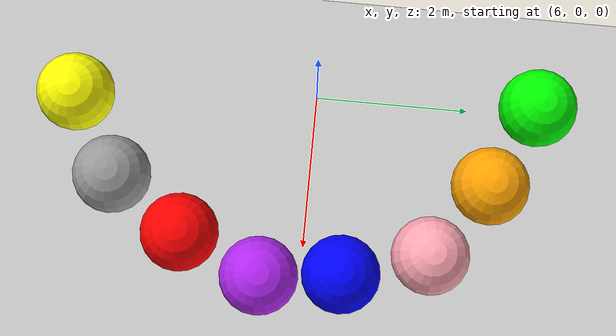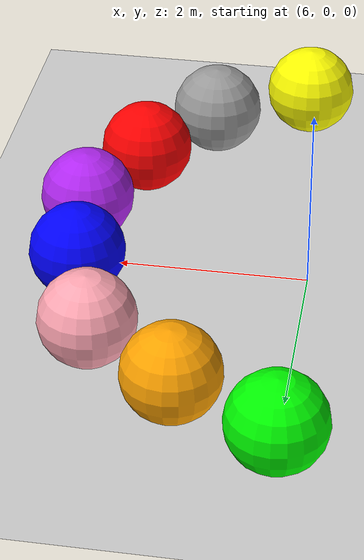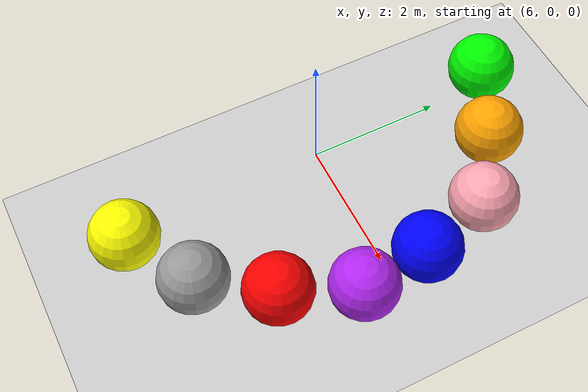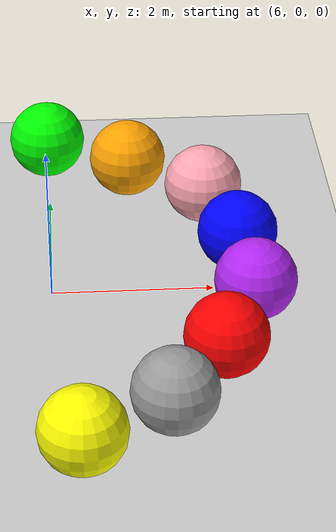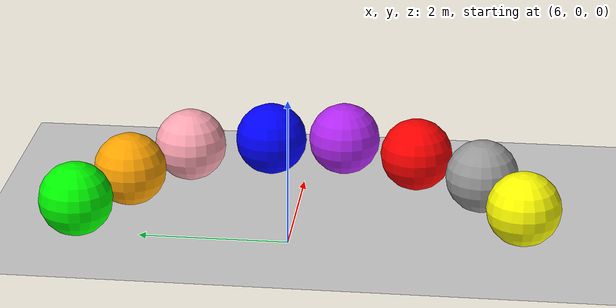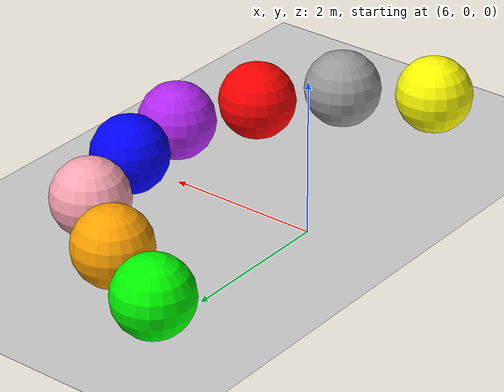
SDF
<sdf version="1.7">
 <world name="default">
  <light name="sun" type="directional">
   <pose>0 0 10 0 -0 0</pose>
   <diffuse>0.8 0.8 0.8 1</diffuse>
   <specular>0.2 0.2 0.2 1</specular>
   <attenuation>
    <range>1000</range>
    <constant>0.9</constant>
    <linear>0.01</linear>
    <quadratic>0.001</quadratic>
   </attenuation>
   <direction>-0.5 0.1 -0.9</direction>
   <spot><inner_angle>0</inner_angle><outer_angle>0</outer_angle><falloff>0</falloff></spot>
  </light>
  <model name="ground_plane">
   <static>1</static>
   <link name="link">
    <collision name="collision">
     <geometry><plane><normal>0 0 1</normal><size>100 100</size></plane></geometry>
     <surface>
      <contact><collide_bitmask>65535</collide_bitmask></contact>
      <friction><ode><mu>100</mu><mu2>50</mu2></ode></friction>
     </surface>
    </collision>
    <visual name="visual">
     <cast_shadows>0</cast_shadows>
     <geometry><plane><normal>0 0 1</normal><size>100 100</size></plane></geometry>
     <material>
      <script><uri>file://media/materials/scripts/gazebo.material</uri><name>Gazebo/Grey</name></script>
     </material>
    </visual>
   </link>
  </model>
  <gravity>0 0 -9.8</gravity>
  <magnetic_field>6e-06 2.3e-05 -4.2e-05</magnetic_field>
  <atmosphere type="adiabatic"/>
  <physics type="ode">
   <max_step_size>0.001</max_step_size>
   <real_time_factor>1</real_time_factor>
   <real_time_update_rate>1000</real_time_update_rate>
  </physics>
  <scene><ambient>0.4 0.4 0.4 1</ambient><background>0.7 0.7 0.7 1</background><shadows>1</shadows></scene>
  <audio><device>default</device></audio>
  <spherical_coordinates>
   <surface_model>EARTH_WGS84</surface_model>
   <latitude_deg>0</latitude_deg>
   <longitude_deg>0</longitude_deg>
   <elevation>0</elevation>
   <heading_deg>0</heading_deg>
  </spherical_coordinates>
  <model name="unit_sphere_blue">
   <link name="link">
    <inertial>
     <mass>1</mass>
     <inertia><ixx>0.1</ixx><ixy>0</ixy><ixz>0</ixz><iyy>0.1</iyy><iyz>0</iyz><izz>0.1</izz></inertia>
    </inertial>
    <visual name="visual">
     <geometry><sphere><radius>0.5</radius></sphere></geometry>
     <material>
      <script><name>Gazebo/Grey</name><uri>file://media/materials/scripts/gazebo.material</uri></script>
      <shader type="pixel"><normal_map>__default__</normal_map></shader>
      <ambient>0 0 1 1</ambient>
      <diffuse>0.7 0.7 0.7 1</diffuse>
      <specular>0.01 0.01 0.01 1</specular>
      <emissive>0 0 0 1</emissive>
     </material>
    </visual>
    <collision name="collision">
     <geometry><sphere><radius>0.5</radius></sphere></geometry>
     <surface>
      <friction>
       <ode><mu>1</mu><mu2>1</mu2><fdir1>0 0 0</fdir1><slip1>0</slip1><slip2>0</slip2></ode>
       <torsional>
        <coefficient>1</coefficient>
        <patch_radius>0</patch_radius>
        <surface_radius>0</surface_radius>
        <use_patch_radius>1</use_patch_radius>
        <ode><slip>0</slip></ode>
       </torsional>
      </friction>
      <bounce><restitution_coefficient>0</restitution_coefficient><threshold>1e+06</threshold></bounce>
      <contact>
       <collide_without_contact>0</collide_without_contact>
       <collide_without_contact_bitmask>1</collide_without_contact_bitmask>
       <collide_bitmask>1</collide_bitmask>
       <ode>
        <soft_cfm>0</soft_cfm>
        <soft_erp>0.2</soft_erp>
        <kp>1e+13</kp>
        <kd>1</kd>
        <max_vel>0.01</max_vel>
        <min_depth>0</min_depth>
       </ode>
       <bullet>
        <split_impulse>1</split_impulse>
        <split_impulse_penetration_threshold>-0.01</split_impulse_penetration_threshold>
        <soft_cfm>0</soft_cfm>
        <soft_erp>0.2</soft_erp>
        <kp>1e+13</kp>
        <kd>1</kd>
       </bullet>
      </contact>
     </surface>
    </collision>
   </link>
   <static>0</static>
   <pose>8.33496 0.510206 0.5 0 -0 0</pose>
  </model>
  <model name="unit_sphere_green">
   <link name="link">
    <inertial>
     <mass>1</mass>
     <inertia><ixx>0.1</ixx><ixy>0</ixy><ixz>0</ixz><iyy>0.1</iyy><iyz>0</iyz><izz>0.1</izz></inertia>
    </inertial>
    <visual name="visual">
     <geometry><sphere><radius>0.5</radius></sphere></geometry>
     <material>
      <script><name>Gazebo/Grey</name><uri>file://media/materials/scripts/gazebo.material</uri></script>
      <shader type="pixel"><normal_map>__default__</normal_map></shader>
      <ambient>0 1 0 1</ambient>
      <diffuse>0.7 0.7 0.7 1</diffuse>
      <specular>0.01 0.01 0.01 1</specular>
      <emissive>0 0 0 1</emissive>
     </material>
    </visual>
    <collision name="collision">
     <geometry><sphere><radius>0.5</radius></sphere></geometry>
     <surface>
      <friction>
       <ode><mu>1</mu><mu2>1</mu2><fdir1>0 0 0</fdir1><slip1>0</slip1><slip2>0</slip2></ode>
       <torsional>
        <coefficient>1</coefficient>
        <patch_radius>0</patch_radius>
        <surface_radius>0</surface_radius>
        <use_patch_radius>1</use_patch_radius>
        <ode><slip>0</slip></ode>
       </torsional>
      </friction>
      <bounce><restitution_coefficient>0</restitution_coefficient><threshold>1e+06</threshold></bounce>
      <contact>
       <collide_without_contact>0</collide_without_contact>
       <collide_without_contact_bitmask>1</collide_without_contact_bitmask>
       <collide_bitmask>1</collide_bitmask>
       <ode>
        <soft_cfm>0</soft_cfm>
        <soft_erp>0.2</soft_erp>
        <kp>1e+13</kp>
        <kd>1</kd>
        <max_vel>0.01</max_vel>
        <min_depth>0</min_depth>
       </ode>
       <bullet>
        <split_impulse>1</split_impulse>
        <split_impulse_penetration_threshold>-0.01</split_impulse_penetration_threshold>
        <soft_cfm>0</soft_cfm>
        <soft_erp>0.2</soft_erp>
        <kp>1e+13</kp>
        <kd>1</kd>
       </bullet>
      </contact>
     </surface>
    </collision>
   </link>
   <static>0</static>
   <pose>5.9823 2.83522 0.5 0 -0 0</pose>
  </model>
  <model name="unit_sphere_red">
   <link name="link">
    <inertial>
     <mass>1</mass>
     <inertia><ixx>0.1</ixx><ixy>0</ixy><ixz>0</ixz><iyy>0.1</iyy><iyz>0</iyz><izz>0.1</izz></inertia>
    </inertial>
    <visual name="visual">
     <geometry><sphere><radius>0.5</radius></sphere></geometry>
     <material>
      <script><name>Gazebo/Grey</name><uri>file://media/materials/scripts/gazebo.material</uri></script>
      <shader type="pixel"><normal_map>__default__</normal_map></shader>
      <diffuse>1 0 0 1</diffuse>
      <ambient>1 0 0 1</ambient>
      <specular>1 0 0 1</specular>
      <emissive>0 0 0 1</emissive>
     </material>
    </visual>
    <collision name="collision">
     <geometry><sphere><radius>0.5</radius></sphere></geometry>
     <surface>
      <friction>
       <ode><mu>1</mu><mu2>1</mu2><fdir1>0 0 0</fdir1><slip1>0</slip1><slip2>0</slip2></ode>
       <torsional>
        <coefficient>1</coefficient>
        <patch_radius>0</patch_radius>
        <surface_radius>0</surface_radius>
        <use_patch_radius>1</use_patch_radius>
        <ode><slip>0</slip></ode>
       </torsional>
      </friction>
      <bounce><restitution_coefficient>0</restitution_coefficient><threshold>1e+06</threshold></bounce>
      <contact>
       <collide_without_contact>0</collide_without_contact>
       <collide_without_contact_bitmask>1</collide_without_contact_bitmask>
       <collide_bitmask>1</collide_bitmask>
       <ode>
        <soft_cfm>0</soft_cfm>
        <soft_erp>0.2</soft_erp>
        <kp>1e+13</kp>
        <kd>1</kd>
        <max_vel>0.01</max_vel>
        <min_depth>0</min_depth>
       </ode>
       <bullet>
        <split_impulse>1</split_impulse>
        <split_impulse_penetration_threshold>-0.01</split_impulse_penetration_threshold>
        <soft_cfm>0</soft_cfm>
        <soft_erp>0.2</soft_erp>
        <kp>1e+13</kp>
        <kd>1</kd>
       </bullet>
      </contact>
     </surface>
    </collision>
   </link>
   <static>0</static>
   <pose>7.99238 -1.56535 0.5 0 -0 0</pose>
  </model>
  <model name="unit_sphere_yellow">
   <link name="link">
    <inertial>
     <mass>1</mass>
     <inertia><ixx>0.1</ixx><ixy>0</ixy><ixz>0</ixz><iyy>0.1</iyy><iyz>0</iyz><izz>0.1</izz></inertia>
    </inertial>
    <visual name="visual">
     <geometry><sphere><radius>0.5</radius></sphere></geometry>
     <material>
      <script><name>Gazebo/Grey</name><uri>file://media/materials/scripts/gazebo.material</uri></script>
      <shader type="pixel"><normal_map>__default__</normal_map></shader>
      <ambient>1 1 0 1</ambient>
      <diffuse>0.7 0.7 0.7 1</diffuse>
      <specular>0.01 0.01 0.01 1</specular>
      <emissive>0 0 0 1</emissive>
     </material>
    </visual>
    <collision name="collision">
     <geometry><sphere><radius>0.5</radius></sphere></geometry>
     <surface>
      <friction>
       <ode><mu>1</mu><mu2>1</mu2><fdir1>0 0 0</fdir1><slip1>0</slip1><slip2>0</slip2></ode>
       <torsional>
        <coefficient>1</coefficient>
        <patch_radius>0</patch_radius>
        <surface_radius>0</surface_radius>
        <use_patch_radius>1</use_patch_radius>
        <ode><slip>0</slip></ode>
       </torsional>
      </friction>
      <bounce><restitution_coefficient>0</restitution_coefficient><threshold>1e+06</threshold></bounce>
      <contact>
       <collide_without_contact>0</collide_without_contact>
       <collide_without_contact_bitmask>1</collide_without_contact_bitmask>
       <collide_bitmask>1</collide_bitmask>
       <ode>
        <soft_cfm>0</soft_cfm>
        <soft_erp>0.2</soft_erp>
        <kp>1e+13</kp>
        <kd>1</kd>
        <max_vel>0.01</max_vel>
        <min_depth>0</min_depth>
       </ode>
       <bullet>
        <split_impulse>1</split_impulse>
        <split_impulse_penetration_threshold>-0.01</split_impulse_penetration_threshold>
        <soft_cfm>0</soft_cfm>
        <soft_erp>0.2</soft_erp>
        <kp>1e+13</kp>
        <kd>1</kd>
       </bullet>
      </contact>
     </surface>
    </collision>
   </link>
   <static>0</static>
   <pose>6.3145 -3.08457 0.5 0 -0 0</pose>
  </model>
  <model name="unit_sphere_pink">
   <link name="link">
    <inertial>
     <mass>1</mass>
     <inertia><ixx>0.1</ixx><ixy>0</ixy><ixz>0</ixz><iyy>0.1</iyy><iyz>0</iyz><izz>0.1</izz></inertia>
    </inertial>
    <visual name="visual">
     <geometry><sphere><radius>0.5</radius></sphere></geometry>
     <material>
      <script><name>Gazebo/Grey</name><uri>file://media/materials/scripts/gazebo.material</uri></script>
      <shader type="pixel"><normal_map>__default__</normal_map></shader>
      <ambient>1 0.65 0.7 1</ambient>
      <diffuse>1 0.65 0.7 1</diffuse>
      <specular>1 0.65 0.7 1</specular>
      <emissive>0 0 0 1</emissive>
     </material>
    </visual>
    <collision name="collision">
     <geometry><sphere><radius>0.5</radius></sphere></geometry>
     <surface>
      <friction>
       <ode><mu>1</mu><mu2>1</mu2><fdir1>0 0 0</fdir1><slip1>0</slip1><slip2>0</slip2></ode>
       <torsional>
        <coefficient>1</coefficient>
        <patch_radius>0</patch_radius>
        <surface_radius>0</surface_radius>
        <use_patch_radius>1</use_patch_radius>
        <ode><slip>0</slip></ode>
       </torsional>
      </friction>
      <bounce><restitution_coefficient>0</restitution_coefficient><threshold>1e+06</threshold></bounce>
      <contact>
       <collide_without_contact>0</collide_without_contact>
       <collide_without_contact_bitmask>1</collide_without_contact_bitmask>
       <collide_bitmask>1</collide_bitmask>
       <ode>
        <soft_cfm>0</soft_cfm>
        <soft_erp>0.2</soft_erp>
        <kp>1e+13</kp>
        <kd>1</kd>
        <max_vel>0.01</max_vel>
        <min_depth>0</min_depth>
       </ode>
       <bullet>
        <split_impulse>1</split_impulse>
        <split_impulse_penetration_threshold>-0.01</split_impulse_penetration_threshold>
        <soft_cfm>0</soft_cfm>
        <soft_erp>0.2</soft_erp>
        <kp>1e+13</kp>
        <kd>1</kd>
       </bullet>
      </contact>
     </surface>
    </collision>
   </link>
   <static>0</static>
   <pose>7.99803 1.61127 0.5 0 -0 0</pose>
  </model>
  <model name="unit_sphere_purple">
   <link name="link">
    <inertial>
     <mass>1</mass>
     <inertia><ixx>0.1</ixx><ixy>0</ixy><ixz>0</ixz><iyy>0.1</iyy><iyz>0</iyz><izz>0.1</izz></inertia>
    </inertial>
    <visual name="visual">
     <geometry><sphere><radius>0.5</radius></sphere></geometry>
     <material>
      <script><name>Gazebo/Grey</name><uri>file://media/materials/scripts/gazebo.material</uri></script>
      <shader type="pixel"><normal_map>__default__</normal_map></shader>
      <ambient>0.7 0.15 0.95 1</ambient>
      <diffuse>0.7 0.15 0.95 1</diffuse>
      <specular>0.7 0.15 0.95 1</specular>
      <emissive>0 0 0 1</emissive>
     </material>
    </visual>
    <collision name="collision">
     <geometry><sphere><radius>0.5</radius></sphere></geometry>
     <surface>
      <friction>
       <ode><mu>1</mu><mu2>1</mu2><fdir1>0 0 0</fdir1><slip1>0</slip1><slip2>0</slip2></ode>
       <torsional>
        <coefficient>1</coefficient>
        <patch_radius>0</patch_radius>
        <surface_radius>0</surface_radius>
        <use_patch_radius>1</use_patch_radius>
        <ode><slip>0</slip></ode>
       </torsional>
      </friction>
      <bounce><restitution_coefficient>0</restitution_coefficient><threshold>1e+06</threshold></bounce>
      <contact>
       <collide_without_contact>0</collide_without_contact>
       <collide_without_contact_bitmask>1</collide_without_contact_bitmask>
       <collide_bitmask>1</collide_bitmask>
       <ode>
        <soft_cfm>0</soft_cfm>
        <soft_erp>0.2</soft_erp>
        <kp>1e+13</kp>
        <kd>1</kd>
        <max_vel>0.01</max_vel>
        <min_depth>0</min_depth>
       </ode>
       <bullet>
        <split_impulse>1</split_impulse>
        <split_impulse_penetration_threshold>-0.01</split_impulse_penetration_threshold>
        <soft_cfm>0</soft_cfm>
        <soft_erp>0.2</soft_erp>
        <kp>1e+13</kp>
        <kd>1</kd>
       </bullet>
      </contact>
     </surface>
    </collision>
   </link>
   <static>0</static>
   <pose>8.4456 -0.517792 0.5 0 -0 0</pose>
  </model>
  <model name="unit_sphere_orange">
   <link name="link">
    <inertial>
     <mass>1</mass>
     <inertia><ixx>0.1</ixx><ixy>0</ixy><ixz>0</ixz><iyy>0.1</iyy><iyz>0</iyz><izz>0.1</izz></inertia>
    </inertial>
    <visual name="visual">
     <geometry><sphere><radius>0.5</radius></sphere></geometry>
     <material>
      <script><name>Gazebo/Grey</name><uri>file://media/materials/scripts/gazebo.material</uri></script>
      <shader type="pixel"><normal_map>__default__</normal_map></shader>
      <ambient>1 0.64 0 1</ambient>
      <diffuse>1 0.64 0 1</diffuse>
      <specular>1 0.64 0.01 1</specular>
      <emissive>0 0 0 1</emissive>
     </material>
    </visual>
    <collision name="collision">
     <geometry><sphere><radius>0.5</radius></sphere></geometry>
     <surface>
      <friction>
       <ode><mu>1</mu><mu2>1</mu2><fdir1>0 0 0</fdir1><slip1>0</slip1><slip2>0</slip2></ode>
       <torsional>
        <coefficient>1</coefficient>
        <patch_radius>0</patch_radius>
        <surface_radius>0</surface_radius>
        <use_patch_radius>1</use_patch_radius>
        <ode><slip>0</slip></ode>
       </torsional>
      </friction>
      <bounce><restitution_coefficient>0</restitution_coefficient><threshold>1e+06</threshold></bounce>
      <contact>
       <collide_without_contact>0</collide_without_contact>
       <collide_without_contact_bitmask>1</collide_without_contact_bitmask>
       <collide_bitmask>1</collide_bitmask>
       <ode>
        <soft_cfm>0</soft_cfm>
        <soft_erp>0.2</soft_erp>
        <kp>1e+13</kp>
        <kd>1</kd>
        <max_vel>0.01</max_vel>
        <min_depth>0</min_depth>
       </ode>
       <bullet>
        <split_impulse>1</split_impulse>
        <split_impulse_penetration_threshold>-0.01</split_impulse_penetration_threshold>
        <soft_cfm>0</soft_cfm>
        <soft_erp>0.2</soft_erp>
        <kp>1e+13</kp>
        <kd>1</kd>
       </bullet>
      </contact>
     </surface>
    </collision>
   </link>
   <static>0</static>
   <pose>7.04721 2.29916 0.5 0 -0 0</pose>
  </model>
  <model name="unit_sphere_white">
   <link name="link">
    <inertial>
     <mass>1</mass>
     <inertia><ixx>0.1</ixx><ixy>0</ixy><ixz>0</ixz><iyy>0.1</iyy><iyz>0</iyz><izz>0.1</izz></inertia>
    </inertial>
    <visual name="visual">
     <geometry><sphere><radius>0.5</radius></sphere></geometry>
     <material>
      <script><name>Gazebo/Grey</name><uri>file://media/materials/scripts/gazebo.material</uri></script>
      <shader type="pixel"><normal_map>__default__</normal_map></shader>
      <ambient>1 1 1 1</ambient>
      <diffuse>1 1 1 1</diffuse>
      <specular>1 1 1 1</specular>
      <emissive>0 0 0 1</emissive>
     </material>
    </visual>
    <collision name="collision">
     <geometry><sphere><radius>0.5</radius></sphere></geometry>
     <surface>
      <friction>
       <ode><mu>1</mu><mu2>1</mu2><fdir1>0 0 0</fdir1><slip1>0</slip1><slip2>0</slip2></ode>
       <torsional>
        <coefficient>1</coefficient>
        <patch_radius>0</patch_radius>
        <surface_radius>0</surface_radius>
        <use_patch_radius>1</use_patch_radius>
        <ode><slip>0</slip></ode>
       </torsional>
      </friction>
      <bounce><restitution_coefficient>0</restitution_coefficient><threshold>1e+06</threshold></bounce>
      <contact>
       <collide_without_contact>0</collide_without_contact>
       <collide_without_contact_bitmask>1</collide_without_contact_bitmask>
       <collide_bitmask>1</collide_bitmask>
       <ode>
        <soft_cfm>0</soft_cfm>
        <soft_erp>0.2</soft_erp>
        <kp>1e+13</kp>
        <kd>1</kd>
        <max_vel>0.01</max_vel>
        <min_depth>0</min_depth>
       </ode>
       <bullet>
        <split_impulse>1</split_impulse>
        <split_impulse_penetration_threshold>-0.01</split_impulse_penetration_threshold>
        <soft_cfm>0</soft_cfm>
        <soft_erp>0.2</soft_erp>
        <kp>1e+13</kp>
        <kd>1</kd>
       </bullet>
      </contact>
     </surface>
    </collision>
   </link>
   <static>0</static>
   <pose>7.3348 -2.49913 0.5 0 -0 0</pose>
  </model>
 </world>
</sdf>
